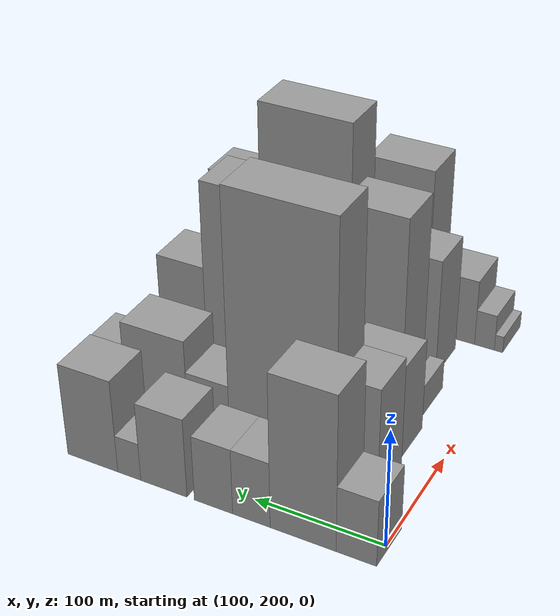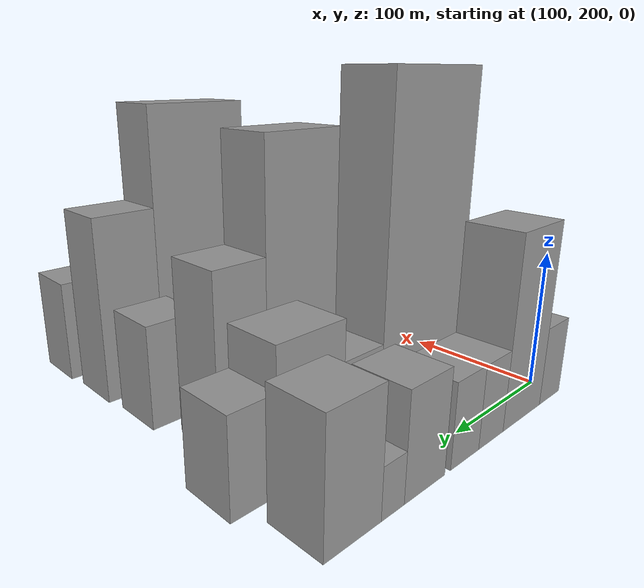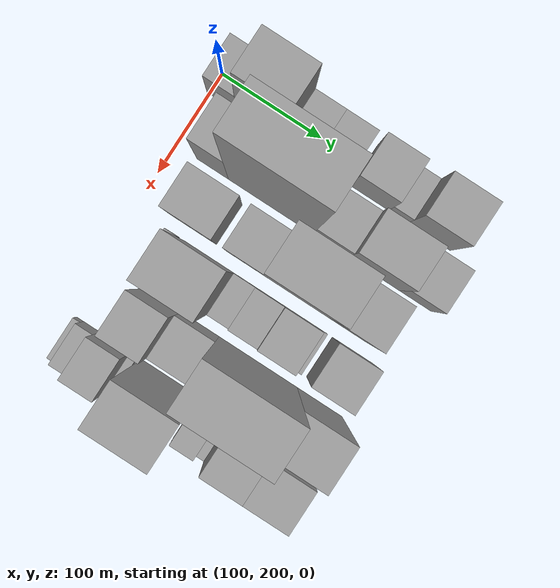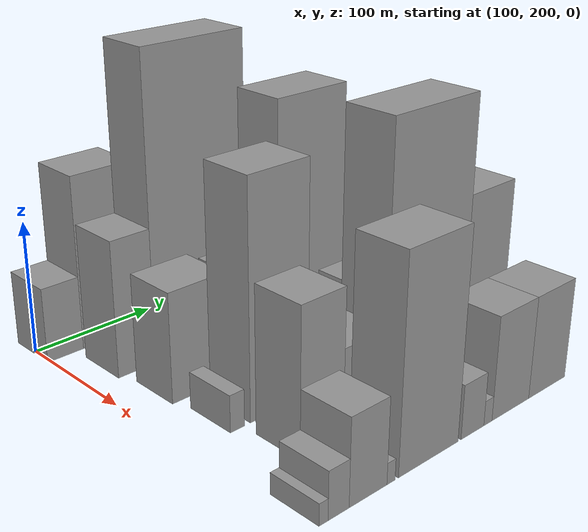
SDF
<sdf version="1.6">
 <world name="default">
  <model name="building_29">
   <static>1</static>
   <pose>100.0000 212.3059 0 0.000000 0.000000 0.000000</pose>
   <link name="link">
    <pose>0 0 28.50 0 0 0</pose>
    <collision name="collision"><geometry><box><size>40.0000 29.8007 57.0000</size></box></geometry></collision>
    <visual name="visual">
     <cast_shadows>0</cast_shadows>
     <geometry><box><size>40.0000 29.8007 57.0000</size></box></geometry>
     <material>
      <script>
       <uri>model://grey_wall/materials/scripts</uri>
       <uri>model://grey_wall/materials/textures</uri>
       <name>vrc/grey_wall</name>
      </script>
     </material>
    </visual>
   </link>
  </model>
  <model name="building_30">
   <static>1</static>
   <pose>100.0000 252.1668 0 0.000000 0.000000 0.000000</pose>
   <link name="link">
    <pose>0 0 66.00 0 0 0</pose>
    <collision name="collision"><geometry><box><size>40.0000 49.9213 132.0000</size></box></geometry></collision>
    <visual name="visual">
     <cast_shadows>0</cast_shadows>
     <geometry><box><size>40.0000 49.9213 132.0000</size></box></geometry>
     <material>
      <script>
       <uri>model://grey_wall/materials/scripts</uri>
       <uri>model://grey_wall/materials/textures</uri>
       <name>vrc/grey_wall</name>
      </script>
     </material>
    </visual>
   </link>
  </model>
  <model name="building_31">
   <static>1</static>
   <pose>100.0000 291.7930 0 0.000000 0.000000 0.000000</pose>
   <link name="link">
    <pose>0 0 28.50 0 0 0</pose>
    <collision name="collision"><geometry><box><size>40.0000 29.3309 57.0000</size></box></geometry></collision>
    <visual name="visual">
     <cast_shadows>0</cast_shadows>
     <geometry><box><size>40.0000 29.3309 57.0000</size></box></geometry>
     <material>
      <script>
       <uri>model://grey_wall/materials/scripts</uri>
       <uri>model://grey_wall/materials/textures</uri>
       <name>vrc/grey_wall</name>
      </script>
     </material>
    </visual>
   </link>
  </model>
  <model name="building_32">
   <static>1</static>
   <pose>100.0000 321.7604 0 0.000000 0.000000 0.000000</pose>
   <link name="link">
    <pose>0 0 28.50 0 0 0</pose>
    <collision name="collision"><geometry><box><size>40.0000 30.6040 57.0000</size></box></geometry></collision>
    <visual name="visual">
     <cast_shadows>0</cast_shadows>
     <geometry><box><size>40.0000 30.6040 57.0000</size></box></geometry>
     <material>
      <script>
       <uri>model://grey_wall/materials/scripts</uri>
       <uri>model://grey_wall/materials/textures</uri>
       <name>vrc/grey_wall</name>
      </script>
     </material>
    </visual>
   </link>
  </model>
  <model name="building_33">
   <static>1</static>
   <pose>100.0000 362.1022 0 0.000000 0.000000 0.000000</pose>
   <link name="link">
    <pose>0 0 34.50 0 0 0</pose>
    <collision name="collision"><geometry><box><size>40.0000 38.0797 69.0000</size></box></geometry></collision>
    <visual name="visual">
     <cast_shadows>0</cast_shadows>
     <geometry><box><size>40.0000 38.0797 69.0000</size></box></geometry>
     <material>
      <script>
       <uri>model://grey_wall/materials/scripts</uri>
       <uri>model://grey_wall/materials/textures</uri>
       <name>vrc/grey_wall</name>
      </script>
     </material>
    </visual>
   </link>
  </model>
  <model name="building_34">
   <static>1</static>
   <pose>100.0000 390.8431 0 0.000000 0.000000 0.000000</pose>
   <link name="link">
    <pose>0 0 16.50 0 0 0</pose>
    <collision name="collision"><geometry><box><size>40.0000 19.4021 33.0000</size></box></geometry></collision>
    <visual name="visual">
     <cast_shadows>0</cast_shadows>
     <geometry><box><size>40.0000 19.4021 33.0000</size></box></geometry>
     <material>
      <script>
       <uri>model://grey_wall/materials/scripts</uri>
       <uri>model://grey_wall/materials/textures</uri>
       <name>vrc/grey_wall</name>
      </script>
     </material>
    </visual>
   </link>
  </model>
  <model name="building_35">
   <static>1</static>
   <pose>100.0000 422.0208 0 0.000000 0.000000 0.000000</pose>
   <link name="link">
    <pose>0 0 40.50 0 0 0</pose>
    <collision name="collision"><geometry><box><size>40.0000 42.9532 81.0000</size></box></geometry></collision>
    <visual name="visual">
     <cast_shadows>0</cast_shadows>
     <geometry><box><size>40.0000 42.9532 81.0000</size></box></geometry>
     <material>
      <script>
       <uri>model://grey_wall/materials/scripts</uri>
       <uri>model://grey_wall/materials/textures</uri>
       <name>vrc/grey_wall</name>
      </script>
     </material>
    </visual>
   </link>
  </model>
  <model name="building_74">
   <static>1</static>
   <pose>152.0000 237.2640 0 0.000000 0.000000 0.000000</pose>
   <link name="link">
    <pose>0 0 51.00 0 0 0</pose>
    <collision name="collision"><geometry><box><size>40.0000 31.7625 102.0000</size></box></geometry></collision>
    <visual name="visual">
     <cast_shadows>0</cast_shadows>
     <geometry><box><size>40.0000 31.7625 102.0000</size></box></geometry>
     <material>
      <script>
       <uri>model://grey_wall/materials/scripts</uri>
       <uri>model://grey_wall/materials/textures</uri>
       <name>vrc/grey_wall</name>
      </script>
     </material>
    </visual>
   </link>
  </model>
  <model name="building_75">
   <static>1</static>
   <pose>152.0000 295.6963 0 0.000000 0.000000 0.000000</pose>
   <link name="link">
    <pose>0 0 112.50 0 0 0</pose>
    <collision name="collision"><geometry><box><size>40.0000 85.1020 225.0000</size></box></geometry></collision>
    <visual name="visual">
     <cast_shadows>0</cast_shadows>
     <geometry><box><size>40.0000 85.1020 225.0000</size></box></geometry>
     <material>
      <script>
       <uri>model://grey_wall/materials/scripts</uri>
       <uri>model://grey_wall/materials/textures</uri>
       <name>vrc/grey_wall</name>
      </script>
     </material>
    </visual>
   </link>
  </model>
  <model name="building_76">
   <static>1</static>
   <pose>152.0000 355.6056 0 0.000000 0.000000 0.000000</pose>
   <link name="link">
    <pose>0 0 31.50 0 0 0</pose>
    <collision name="collision"><geometry><box><size>40.0000 34.7167 63.0000</size></box></geometry></collision>
    <visual name="visual">
     <cast_shadows>0</cast_shadows>
     <geometry><box><size>40.0000 34.7167 63.0000</size></box></geometry>
     <material>
      <script>
       <uri>model://grey_wall/materials/scripts</uri>
       <uri>model://grey_wall/materials/textures</uri>
       <name>vrc/grey_wall</name>
      </script>
     </material>
    </visual>
   </link>
  </model>
  <model name="building_77">
   <static>1</static>
   <pose>152.0000 399.3563 0 0.000000 0.000000 0.000000</pose>
   <link name="link">
    <pose>0 0 45.00 0 0 0</pose>
    <collision name="collision"><geometry><box><size>40.0000 52.7846 90.0000</size></box></geometry></collision>
    <visual name="visual">
     <cast_shadows>0</cast_shadows>
     <geometry><box><size>40.0000 52.7846 90.0000</size></box></geometry>
     <material>
      <script>
       <uri>model://grey_wall/materials/scripts</uri>
       <uri>model://grey_wall/materials/textures</uri>
       <name>vrc/grey_wall</name>
      </script>
     </material>
    </visual>
   </link>
  </model>
  <model name="building_78">
   <static>1</static>
   <pose>152.0000 441.9000 0 0.000000 0.000000 0.000000</pose>
   <link name="link">
    <pose>0 0 31.50 0 0 0</pose>
    <collision name="collision"><geometry><box><size>40.0000 32.3029 63.0000</size></box></geometry></collision>
    <visual name="visual">
     <cast_shadows>0</cast_shadows>
     <geometry><box><size>40.0000 32.3029 63.0000</size></box></geometry>
     <material>
      <script>
       <uri>model://grey_wall/materials/scripts</uri>
       <uri>model://grey_wall/materials/textures</uri>
       <name>vrc/grey_wall</name>
      </script>
     </material>
    </visual>
   </link>
  </model>
  <model name="building_118">
   <static>1</static>
   <pose>204.0000 251.3839 0 0.000000 0.000000 0.000000</pose>
   <link name="link">
    <pose>0 0 40.50 0 0 0</pose>
    <collision name="collision"><geometry><box><size>40.0000 47.0164 81.0000</size></box></geometry></collision>
    <visual name="visual">
     <cast_shadows>0</cast_shadows>
     <geometry><box><size>40.0000 47.0164 81.0000</size></box></geometry>
     <material>
      <script>
       <uri>model://grey_wall/materials/scripts</uri>
       <uri>model://grey_wall/materials/textures</uri>
       <name>vrc/grey_wall</name>
      </script>
     </material>
    </visual>
   </link>
  </model>
  <model name="building_119">
   <static>1</static>
   <pose>204.0000 303.8186 0 0.000000 0.000000 0.000000</pose>
   <link name="link">
    <pose>0 0 37.50 0 0 0</pose>
    <collision name="collision"><geometry><box><size>40.0000 37.8530 75.0000</size></box></geometry></collision>
    <visual name="visual">
     <cast_shadows>0</cast_shadows>
     <geometry><box><size>40.0000 37.8530 75.0000</size></box></geometry>
     <material>
      <script>
       <uri>model://grey_wall/materials/scripts</uri>
       <uri>model://grey_wall/materials/textures</uri>
       <name>vrc/grey_wall</name>
      </script>
     </material>
    </visual>
   </link>
  </model>
  <model name="building_120">
   <static>1</static>
   <pose>204.0000 354.7901 0 0.000000 0.000000 0.000000</pose>
   <link name="link">
    <pose>0 0 94.50 0 0 0</pose>
    <collision name="collision"><geometry><box><size>40.0000 64.0901 189.0000</size></box></geometry></collision>
    <visual name="visual">
     <cast_shadows>0</cast_shadows>
     <geometry><box><size>40.0000 64.0901 189.0000</size></box></geometry>
     <material>
      <script>
       <uri>model://grey_wall/materials/scripts</uri>
       <uri>model://grey_wall/materials/textures</uri>
       <name>vrc/grey_wall</name>
      </script>
     </material>
    </visual>
   </link>
  </model>
  <model name="building_121">
   <static>1</static>
   <pose>204.0000 406.4677 0 0.000000 0.000000 0.000000</pose>
   <link name="link">
    <pose>0 0 58.50 0 0 0</pose>
    <collision name="collision"><geometry><box><size>40.0000 39.2651 117.0000</size></box></geometry></collision>
    <visual name="visual">
     <cast_shadows>0</cast_shadows>
     <geometry><box><size>40.0000 39.2651 117.0000</size></box></geometry>
     <material>
      <script>
       <uri>model://grey_wall/materials/scripts</uri>
       <uri>model://grey_wall/materials/textures</uri>
       <name>vrc/grey_wall</name>
      </script>
     </material>
    </visual>
   </link>
  </model>
  <model name="building_165">
   <static>1</static>
   <pose>256.0000 239.3837 0 0.000000 0.000000 0.000000</pose>
   <link name="link">
    <pose>0 0 13.50 0 0 0</pose>
    <collision name="collision"><geometry><box><size>40.0000 11.8160 27.0000</size></box></geometry></collision>
    <visual name="visual">
     <cast_shadows>0</cast_shadows>
     <geometry><box><size>40.0000 11.8160 27.0000</size></box></geometry>
     <material>
      <script>
       <uri>model://grey_wall/materials/scripts</uri>
       <uri>model://grey_wall/materials/textures</uri>
       <name>vrc/grey_wall</name>
      </script>
     </material>
    </visual>
   </link>
  </model>
  <model name="building_166">
   <static>1</static>
   <pose>256.0000 275.8806 0 0.000000 0.000000 0.000000</pose>
   <link name="link">
    <pose>0 0 84.00 0 0 0</pose>
    <collision name="collision"><geometry><box><size>40.0000 51.1778 168.0000</size></box></geometry></collision>
    <visual name="visual">
     <cast_shadows>0</cast_shadows>
     <geometry><box><size>40.0000 51.1778 168.0000</size></box></geometry>
     <material>
      <script>
       <uri>model://grey_wall/materials/scripts</uri>
       <uri>model://grey_wall/materials/textures</uri>
       <name>vrc/grey_wall</name>
      </script>
     </material>
    </visual>
   </link>
  </model>
  <model name="building_167">
   <static>1</static>
   <pose>256.0000 311.9198 0 0.000000 0.000000 0.000000</pose>
   <link name="link">
    <pose>0 0 18.00 0 0 0</pose>
    <collision name="collision"><geometry><box><size>40.0000 20.9005 36.0000</size></box></geometry></collision>
    <visual name="visual">
     <cast_shadows>0</cast_shadows>
     <geometry><box><size>40.0000 20.9005 36.0000</size></box></geometry>
     <material>
      <script>
       <uri>model://grey_wall/materials/scripts</uri>
       <uri>model://grey_wall/materials/textures</uri>
       <name>vrc/grey_wall</name>
      </script>
     </material>
    </visual>
   </link>
  </model>
  <model name="building_168">
   <static>1</static>
   <pose>256.0000 336.3967 0 0.000000 0.000000 0.000000</pose>
   <link name="link">
    <pose>0 0 25.50 0 0 0</pose>
    <collision name="collision"><geometry><box><size>40.0000 28.0534 51.0000</size></box></geometry></collision>
    <visual name="visual">
     <cast_shadows>0</cast_shadows>
     <geometry><box><size>40.0000 28.0534 51.0000</size></box></geometry>
     <material>
      <script>
       <uri>model://grey_wall/materials/scripts</uri>
       <uri>model://grey_wall/materials/textures</uri>
       <name>vrc/grey_wall</name>
      </script>
     </material>
    </visual>
   </link>
  </model>
  <model name="building_169">
   <static>1</static>
   <pose>256.0000 368.3785 0 0.000000 0.000000 0.000000</pose>
   <link name="link">
    <pose>0 0 31.50 0 0 0</pose>
    <collision name="collision"><geometry><box><size>40.0000 35.9102 63.0000</size></box></geometry></collision>
    <visual name="visual">
     <cast_shadows>0</cast_shadows>
     <geometry><box><size>40.0000 35.9102 63.0000</size></box></geometry>
     <material>
      <script>
       <uri>model://grey_wall/materials/scripts</uri>
       <uri>model://grey_wall/materials/textures</uri>
       <name>vrc/grey_wall</name>
      </script>
     </material>
    </visual>
   </link>
  </model>
  <model name="building_170">
   <static>1</static>
   <pose>256.0000 390.0633 0 0.000000 0.000000 0.000000</pose>
   <link name="link">
    <pose>0 0 9.00 0 0 0</pose>
    <collision name="collision"><geometry><box><size>40.0000 7.4593 18.0000</size></box></geometry></collision>
    <visual name="visual">
     <cast_shadows>0</cast_shadows>
     <geometry><box><size>40.0000 7.4593 18.0000</size></box></geometry>
     <material>
      <script>
       <uri>model://grey_wall/materials/scripts</uri>
       <uri>model://grey_wall/materials/textures</uri>
       <name>vrc/grey_wall</name>
      </script>
     </material>
    </visual>
   </link>
  </model>
  <model name="building_171">
   <static>1</static>
   <pose>256.0000 419.8210 0 0.000000 0.000000 0.000000</pose>
   <link name="link">
    <pose>0 0 36.00 0 0 0</pose>
    <collision name="collision"><geometry><box><size>40.0000 40.0562 72.0000</size></box></geometry></collision>
    <visual name="visual">
     <cast_shadows>0</cast_shadows>
     <geometry><box><size>40.0000 40.0562 72.0000</size></box></geometry>
     <material>
      <script>
       <uri>model://grey_wall/materials/scripts</uri>
       <uri>model://grey_wall/materials/textures</uri>
       <name>vrc/grey_wall</name>
      </script>
     </material>
    </visual>
   </link>
  </model>
  <model name="building_215">
   <static>1</static>
   <pose>308.0000 263.0836 0 0.000000 0.000000 0.000000</pose>
   <link name="link">
    <pose>0 0 52.50 0 0 0</pose>
    <collision name="collision"><geometry><box><size>40.0000 37.2755 105.0000</size></box></geometry></collision>
    <visual name="visual">
     <cast_shadows>0</cast_shadows>
     <geometry><box><size>40.0000 37.2755 105.0000</size></box></geometry>
     <material>
      <script>
       <uri>model://grey_wall/materials/scripts</uri>
       <uri>model://grey_wall/materials/textures</uri>
       <name>vrc/grey_wall</name>
      </script>
     </material>
    </visual>
   </link>
  </model>
  <model name="building_216">
   <static>1</static>
   <pose>308.0000 300.5353 0 0.000000 0.000000 0.000000</pose>
   <link name="link">
    <pose>0 0 31.50 0 0 0</pose>
    <collision name="collision"><geometry><box><size>40.0000 37.6280 63.0000</size></box></geometry></collision>
    <visual name="visual">
     <cast_shadows>0</cast_shadows>
     <geometry><box><size>40.0000 37.6280 63.0000</size></box></geometry>
     <material>
      <script>
       <uri>model://grey_wall/materials/scripts</uri>
       <uri>model://grey_wall/materials/textures</uri>
       <name>vrc/grey_wall</name>
      </script>
     </material>
    </visual>
   </link>
  </model>
  <model name="building_217">
   <static>1</static>
   <pose>308.0000 358.7256 0 0.000000 0.000000 0.000000</pose>
   <link name="link">
    <pose>0 0 100.50 0 0 0</pose>
    <collision name="collision"><geometry><box><size>40.0000 78.7526 201.0000</size></box></geometry></collision>
    <visual name="visual">
     <cast_shadows>0</cast_shadows>
     <geometry><box><size>40.0000 78.7526 201.0000</size></box></geometry>
     <material>
      <script>
       <uri>model://grey_wall/materials/scripts</uri>
       <uri>model://grey_wall/materials/textures</uri>
       <name>vrc/grey_wall</name>
      </script>
     </material>
    </visual>
   </link>
  </model>
  <model name="building_218">
   <static>1</static>
   <pose>308.0000 420.8518 0 0.000000 0.000000 0.000000</pose>
   <link name="link">
    <pose>0 0 66.00 0 0 0</pose>
    <collision name="collision"><geometry><box><size>40.0000 45.4997 132.0000</size></box></geometry></collision>
    <visual name="visual">
     <cast_shadows>0</cast_shadows>
     <geometry><box><size>40.0000 45.4997 132.0000</size></box></geometry>
     <material>
      <script>
       <uri>model://grey_wall/materials/scripts</uri>
       <uri>model://grey_wall/materials/textures</uri>
       <name>vrc/grey_wall</name>
      </script>
     </material>
    </visual>
   </link>
  </model>
  <model name="building_264">
   <static>1</static>
   <pose>360.0000 212.4110 0 0.000000 0.000000 0.000000</pose>
   <link name="link">
    <pose>0 0 7.50 0 0 0</pose>
    <collision name="collision"><geometry><box><size>40.0000 7.0469 15.0000</size></box></geometry></collision>
    <visual name="visual">
     <cast_shadows>0</cast_shadows>
     <geometry><box><size>40.0000 7.0469 15.0000</size></box></geometry>
     <material>
      <script>
       <uri>model://grey_wall/materials/scripts</uri>
       <uri>model://grey_wall/materials/textures</uri>
       <name>vrc/grey_wall</name>
      </script>
     </material>
    </visual>
   </link>
  </model>
  <model name="building_265">
   <static>1</static>
   <pose>360.0000 224.3766 0 0.000000 0.000000 0.000000</pose>
   <link name="link">
    <pose>0 0 16.50 0 0 0</pose>
    <collision name="collision"><geometry><box><size>40.0000 16.8842 33.0000</size></box></geometry></collision>
    <visual name="visual">
     <cast_shadows>0</cast_shadows>
     <geometry><box><size>40.0000 16.8842 33.0000</size></box></geometry>
     <material>
      <script>
       <uri>model://grey_wall/materials/scripts</uri>
       <uri>model://grey_wall/materials/textures</uri>
       <name>vrc/grey_wall</name>
      </script>
     </material>
    </visual>
   </link>
  </model>
  <model name="building_266">
   <static>1</static>
   <pose>360.0000 248.7257 0 0.000000 0.000000 0.000000</pose>
   <link name="link">
    <pose>0 0 30.00 0 0 0</pose>
    <collision name="collision"><geometry><box><size>40.0000 31.8141 60.0000</size></box></geometry></collision>
    <visual name="visual">
     <cast_shadows>0</cast_shadows>
     <geometry><box><size>40.0000 31.8141 60.0000</size></box></geometry>
     <material>
      <script>
       <uri>model://grey_wall/materials/scripts</uri>
       <uri>model://grey_wall/materials/textures</uri>
       <name>vrc/grey_wall</name>
      </script>
     </material>
    </visual>
   </link>
  </model>
  <model name="building_267">
   <static>1</static>
   <pose>360.0000 268.2069 0 0.000000 0.000000 0.000000</pose>
   <link name="link">
    <pose>0 0 7.50 0 0 0</pose>
    <collision name="collision"><geometry><box><size>40.0000 7.1482 15.0000</size></box></geometry></collision>
    <visual name="visual">
     <cast_shadows>0</cast_shadows>
     <geometry><box><size>40.0000 7.1482 15.0000</size></box></geometry>
     <material>
      <script>
       <uri>model://grey_wall/materials/scripts</uri>
       <uri>model://grey_wall/materials/textures</uri>
       <name>vrc/grey_wall</name>
      </script>
     </material>
    </visual>
   </link>
  </model>
  <model name="building_268">
   <static>1</static>
   <pose>360.0000 302.6223 0 0.000000 0.000000 0.000000</pose>
   <link name="link">
    <pose>0 0 73.50 0 0 0</pose>
    <collision name="collision"><geometry><box><size>40.0000 55.6825 147.0000</size></box></geometry></collision>
    <visual name="visual">
     <cast_shadows>0</cast_shadows>
     <geometry><box><size>40.0000 55.6825 147.0000</size></box></geometry>
     <material>
      <script>
       <uri>model://grey_wall/materials/scripts</uri>
       <uri>model://grey_wall/materials/textures</uri>
       <name>vrc/grey_wall</name>
      </script>
     </material>
    </visual>
   </link>
  </model>
  <model name="building_269">
   <static>1</static>
   <pose>360.0000 345.0044 0 0.000000 0.000000 0.000000</pose>
   <link name="link">
    <pose>0 0 19.50 0 0 0</pose>
    <collision name="collision"><geometry><box><size>40.0000 23.0818 39.0000</size></box></geometry></collision>
    <visual name="visual">
     <cast_shadows>0</cast_shadows>
     <geometry><box><size>40.0000 23.0818 39.0000</size></box></geometry>
     <material>
      <script>
       <uri>model://grey_wall/materials/scripts</uri>
       <uri>model://grey_wall/materials/textures</uri>
       <name>vrc/grey_wall</name>
      </script>
     </material>
    </visual>
   </link>
  </model>
  <model name="building_270">
   <static>1</static>
   <pose>360.0000 360.7858 0 0.000000 0.000000 0.000000</pose>
   <link name="link">
    <pose>0 0 9.00 0 0 0</pose>
    <collision name="collision"><geometry><box><size>40.0000 8.4809 18.0000</size></box></geometry></collision>
    <visual name="visual">
     <cast_shadows>0</cast_shadows>
     <geometry><box><size>40.0000 8.4809 18.0000</size></box></geometry>
     <material>
      <script>
       <uri>model://grey_wall/materials/scripts</uri>
       <uri>model://grey_wall/materials/textures</uri>
       <name>vrc/grey_wall</name>
      </script>
     </material>
    </visual>
   </link>
  </model>
  <model name="building_271">
   <static>1</static>
   <pose>360.0000 385.0079 0 0.000000 0.000000 0.000000</pose>
   <link name="link">
    <pose>0 0 37.50 0 0 0</pose>
    <collision name="collision"><geometry><box><size>40.0000 39.9633 75.0000</size></box></geometry></collision>
    <visual name="visual">
     <cast_shadows>0</cast_shadows>
     <geometry><box><size>40.0000 39.9633 75.0000</size></box></geometry>
     <material>
      <script>
       <uri>model://grey_wall/materials/scripts</uri>
       <uri>model://grey_wall/materials/textures</uri>
       <name>vrc/grey_wall</name>
      </script>
     </material>
    </visual>
   </link>
  </model>
  <model name="building_272">
   <static>1</static>
   <pose>360.0000 425.9610 0 0.000000 0.000000 0.000000</pose>
   <link name="link">
    <pose>0 0 37.50 0 0 0</pose>
    <collision name="collision"><geometry><box><size>40.0000 41.9428 75.0000</size></box></geometry></collision>
    <visual name="visual">
     <cast_shadows>0</cast_shadows>
     <geometry><box><size>40.0000 41.9428 75.0000</size></box></geometry>
     <material>
      <script>
       <uri>model://grey_wall/materials/scripts</uri>
       <uri>model://grey_wall/materials/textures</uri>
       <name>vrc/grey_wall</name>
      </script>
     </material>
    </visual>
   </link>
  </model>
 </world>
</sdf>
